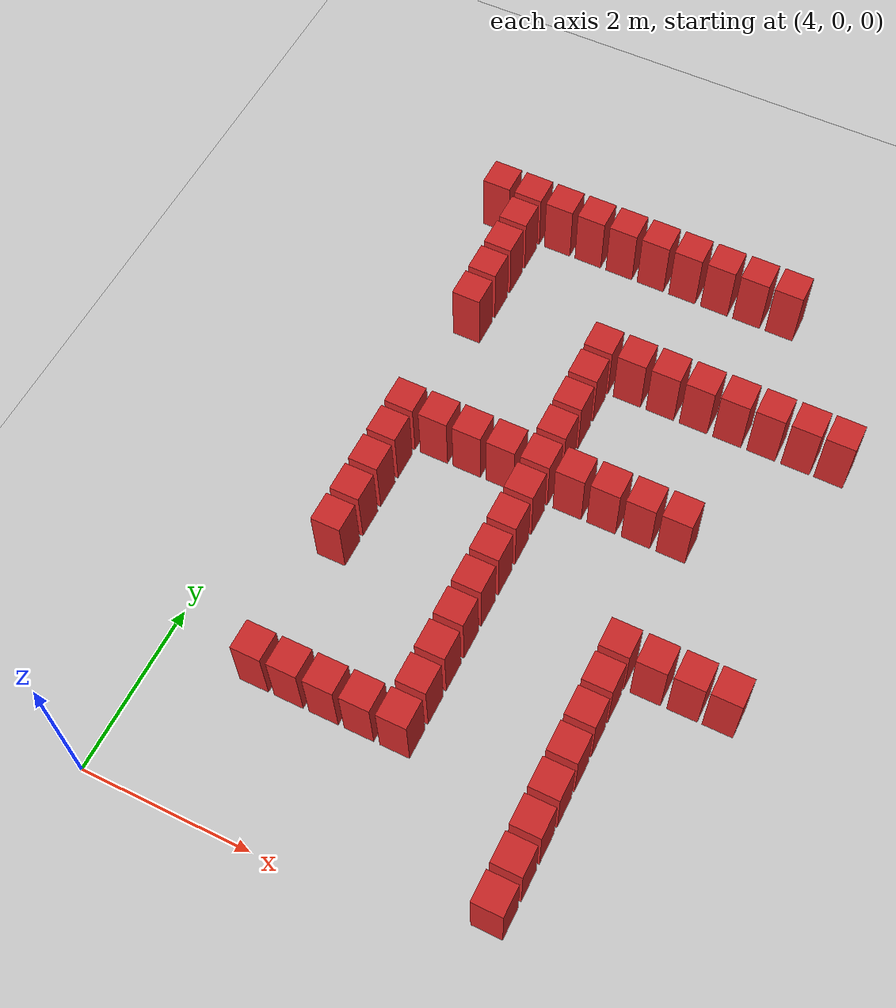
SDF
<sdf version="1.6">
 <world name="default">
  <model name="ground_plane">
   <static>1</static>
   <link name="link">
    <collision name="collision">
     <geometry><plane><normal>0 0 1</normal><size>100 100</size></plane></geometry>
     <surface><friction><ode><mu>100</mu><mu2>50</mu2></ode></friction></surface>
    </collision>
    <visual name="visual">
     <cast_shadows>0</cast_shadows>
     <geometry><plane><normal>0 0 1</normal><size>100 100</size></plane></geometry>
     <material>
      <script><uri>file://media/materials/scripts/gazebo.material</uri><name>Gazebo/Grey</name></script>
     </material>
    </visual>
   </link>
  </model>
  <model name="box_obstacle357">
   <static>0</static>
   <link name="link">
    <pose>0 0 0.1 0 -0 0</pose>
    <inertial>
     <mass>100</mass>
     <inertia>
      <ixx>0.166667</ixx>
      <ixy>0</ixy>
      <ixz>0</ixz>
      <iyy>0.166667</iyy>
      <iyz>0</iyz>
      <izz>0.166667</izz>
     </inertia>
    </inertial>
    <collision name="collision"><geometry><box><size>0.35 0.35 0.8</size></box></geometry></collision>
    <visual name="visual">
     <geometry><box><size>0.35 0.35 0.8</size></box></geometry>
     <material>
      <script><name>Gazebo/Red</name><uri>file://media/materials/scripts/gazebo.material</uri></script>
     </material>
    </visual>
   </link>
   <pose>4.69966 8.48006 0.300001 -1e-06 1.7e-05 0.000735</pose>
  </model>
  <model name="box_obstacle367">
   <static>0</static>
   <link name="link">
    <pose>0 0 0.1 0 -0 0</pose>
    <inertial>
     <mass>100</mass>
     <inertia>
      <ixx>0.166667</ixx>
      <ixy>0</ixy>
      <ixz>0</ixz>
      <iyy>0.166667</iyy>
      <iyz>0</iyz>
      <izz>0.166667</izz>
     </inertia>
    </inertial>
    <collision name="collision"><geometry><box><size>0.35 0.35 0.8</size></box></geometry></collision>
    <visual name="visual">
     <geometry><box><size>0.35 0.35 0.8</size></box></geometry>
     <material>
      <script><name>Gazebo/Red</name><uri>file://media/materials/scripts/gazebo.material</uri></script>
     </material>
    </visual>
   </link>
   <pose>5.11966 1.76006 0.300001 -1e-06 1.7e-05 0.000735</pose>
  </model>
  <model name="box_obstacle368">
   <static>0</static>
   <link name="link">
    <pose>0 0 0.1 0 -0 0</pose>
    <inertial>
     <mass>100</mass>
     <inertia>
      <ixx>0.166667</ixx>
      <ixy>0</ixy>
      <ixz>0</ixz>
      <iyy>0.166667</iyy>
      <iyz>0</iyz>
      <izz>0.166667</izz>
     </inertia>
    </inertial>
    <collision name="collision"><geometry><box><size>0.35 0.35 0.8</size></box></geometry></collision>
    <visual name="visual">
     <geometry><box><size>0.35 0.35 0.8</size></box></geometry>
     <material>
      <script><name>Gazebo/Red</name><uri>file://media/materials/scripts/gazebo.material</uri></script>
     </material>
    </visual>
   </link>
   <pose>5.11966 3.44006 0.300001 -1e-06 1.7e-05 0.000735</pose>
  </model>
  <model name="box_obstacle369">
   <static>0</static>
   <link name="link">
    <pose>0 0 0.1 0 -0 0</pose>
    <inertial>
     <mass>100</mass>
     <inertia>
      <ixx>0.166667</ixx>
      <ixy>0</ixy>
      <ixz>0</ixz>
      <iyy>0.166667</iyy>
      <iyz>0</iyz>
      <izz>0.166667</izz>
     </inertia>
    </inertial>
    <collision name="collision"><geometry><box><size>0.35 0.35 0.8</size></box></geometry></collision>
    <visual name="visual">
     <geometry><box><size>0.35 0.35 0.8</size></box></geometry>
     <material>
      <script><name>Gazebo/Red</name><uri>file://media/materials/scripts/gazebo.material</uri></script>
     </material>
    </visual>
   </link>
   <pose>5.11966 3.86006 0.300001 -1e-06 1.7e-05 0.000735</pose>
  </model>
  <model name="box_obstacle370">
   <static>0</static>
   <link name="link">
    <pose>0 0 0.1 0 -0 0</pose>
    <inertial>
     <mass>100</mass>
     <inertia>
      <ixx>0.166667</ixx>
      <ixy>0</ixy>
      <ixz>0</ixz>
      <iyy>0.166667</iyy>
      <iyz>0</iyz>
      <izz>0.166667</izz>
     </inertia>
    </inertial>
    <collision name="collision"><geometry><box><size>0.35 0.35 0.8</size></box></geometry></collision>
    <visual name="visual">
     <geometry><box><size>0.35 0.35 0.8</size></box></geometry>
     <material>
      <script><name>Gazebo/Red</name><uri>file://media/materials/scripts/gazebo.material</uri></script>
     </material>
    </visual>
   </link>
   <pose>5.11966 4.28006 0.300001 -1e-06 1.7e-05 0.000735</pose>
  </model>
  <model name="box_obstacle371">
   <static>0</static>
   <link name="link">
    <pose>0 0 0.1 0 -0 0</pose>
    <inertial>
     <mass>100</mass>
     <inertia>
      <ixx>0.166667</ixx>
      <ixy>0</ixy>
      <ixz>0</ixz>
      <iyy>0.166667</iyy>
      <iyz>0</iyz>
      <izz>0.166667</izz>
     </inertia>
    </inertial>
    <collision name="collision"><geometry><box><size>0.35 0.35 0.8</size></box></geometry></collision>
    <visual name="visual">
     <geometry><box><size>0.35 0.35 0.8</size></box></geometry>
     <material>
      <script><name>Gazebo/Red</name><uri>file://media/materials/scripts/gazebo.material</uri></script>
     </material>
    </visual>
   </link>
   <pose>5.11966 4.70006 0.300001 -1e-06 1.7e-05 0.000735</pose>
  </model>
  <model name="box_obstacle372">
   <static>0</static>
   <link name="link">
    <pose>0 0 0.1 0 -0 0</pose>
    <inertial>
     <mass>100</mass>
     <inertia>
      <ixx>0.166667</ixx>
      <ixy>0</ixy>
      <ixz>0</ixz>
      <iyy>0.166667</iyy>
      <iyz>0</iyz>
      <izz>0.166667</izz>
     </inertia>
    </inertial>
    <collision name="collision"><geometry><box><size>0.35 0.35 0.8</size></box></geometry></collision>
    <visual name="visual">
     <geometry><box><size>0.35 0.35 0.8</size></box></geometry>
     <material>
      <script><name>Gazebo/Red</name><uri>file://media/materials/scripts/gazebo.material</uri></script>
     </material>
    </visual>
   </link>
   <pose>5.11966 5.12006 0.300001 -1e-06 1.7e-05 0.000735</pose>
  </model>
  <model name="box_obstacle373">
   <static>0</static>
   <link name="link">
    <pose>0 0 0.1 0 -0 0</pose>
    <inertial>
     <mass>100</mass>
     <inertia>
      <ixx>0.166667</ixx>
      <ixy>0</ixy>
      <ixz>0</ixz>
      <iyy>0.166667</iyy>
      <iyz>0</iyz>
      <izz>0.166667</izz>
     </inertia>
    </inertial>
    <collision name="collision"><geometry><box><size>0.35 0.35 0.8</size></box></geometry></collision>
    <visual name="visual">
     <geometry><box><size>0.35 0.35 0.8</size></box></geometry>
     <material>
      <script><name>Gazebo/Red</name><uri>file://media/materials/scripts/gazebo.material</uri></script>
     </material>
    </visual>
   </link>
   <pose>5.11966 6.80006 0.300001 -1e-06 1.7e-05 0.000735</pose>
  </model>
  <model name="box_obstacle374">
   <static>0</static>
   <link name="link">
    <pose>0 0 0.1 0 -0 0</pose>
    <inertial>
     <mass>100</mass>
     <inertia>
      <ixx>0.166667</ixx>
      <ixy>0</ixy>
      <ixz>0</ixz>
      <iyy>0.166667</iyy>
      <iyz>0</iyz>
      <izz>0.166667</izz>
     </inertia>
    </inertial>
    <collision name="collision"><geometry><box><size>0.35 0.35 0.8</size></box></geometry></collision>
    <visual name="visual">
     <geometry><box><size>0.35 0.35 0.8</size></box></geometry>
     <material>
      <script><name>Gazebo/Red</name><uri>file://media/materials/scripts/gazebo.material</uri></script>
     </material>
    </visual>
   </link>
   <pose>5.11966 7.22006 0.300001 -1e-06 1.7e-05 0.000735</pose>
  </model>
  <model name="box_obstacle375">
   <static>0</static>
   <link name="link">
    <pose>0 0 0.1 0 -0 0</pose>
    <inertial>
     <mass>100</mass>
     <inertia>
      <ixx>0.166667</ixx>
      <ixy>0</ixy>
      <ixz>0</ixz>
      <iyy>0.166667</iyy>
      <iyz>0</iyz>
      <izz>0.166667</izz>
     </inertia>
    </inertial>
    <collision name="collision"><geometry><box><size>0.35 0.35 0.8</size></box></geometry></collision>
    <visual name="visual">
     <geometry><box><size>0.35 0.35 0.8</size></box></geometry>
     <material>
      <script><name>Gazebo/Red</name><uri>file://media/materials/scripts/gazebo.material</uri></script>
     </material>
    </visual>
   </link>
   <pose>5.11966 7.64006 0.300001 -1e-06 1.7e-05 0.000735</pose>
  </model>
  <model name="box_obstacle376">
   <static>0</static>
   <link name="link">
    <pose>0 0 0.1 0 -0 0</pose>
    <inertial>
     <mass>100</mass>
     <inertia>
      <ixx>0.166667</ixx>
      <ixy>0</ixy>
      <ixz>0</ixz>
      <iyy>0.166667</iyy>
      <iyz>0</iyz>
      <izz>0.166667</izz>
     </inertia>
    </inertial>
    <collision name="collision"><geometry><box><size>0.35 0.35 0.8</size></box></geometry></collision>
    <visual name="visual">
     <geometry><box><size>0.35 0.35 0.8</size></box></geometry>
     <material>
      <script><name>Gazebo/Red</name><uri>file://media/materials/scripts/gazebo.material</uri></script>
     </material>
    </visual>
   </link>
   <pose>5.11966 8.06006 0.300001 -1e-06 1.7e-05 0.000735</pose>
  </model>
  <model name="box_obstacle377">
   <static>0</static>
   <link name="link">
    <pose>0 0 0.1 0 -0 0</pose>
    <inertial>
     <mass>100</mass>
     <inertia>
      <ixx>0.166667</ixx>
      <ixy>0</ixy>
      <ixz>0</ixz>
      <iyy>0.166667</iyy>
      <iyz>0</iyz>
      <izz>0.166667</izz>
     </inertia>
    </inertial>
    <collision name="collision"><geometry><box><size>0.35 0.35 0.8</size></box></geometry></collision>
    <visual name="visual">
     <geometry><box><size>0.35 0.35 0.8</size></box></geometry>
     <material>
      <script><name>Gazebo/Red</name><uri>file://media/materials/scripts/gazebo.material</uri></script>
     </material>
    </visual>
   </link>
   <pose>5.11966 8.48006 0.300001 -1e-06 1.7e-05 0.000735</pose>
  </model>
  <model name="box_obstacle383">
   <static>0</static>
   <link name="link">
    <pose>0 0 0.1 0 -0 0</pose>
    <inertial>
     <mass>100</mass>
     <inertia>
      <ixx>0.166667</ixx>
      <ixy>0</ixy>
      <ixz>0</ixz>
      <iyy>0.166667</iyy>
      <iyz>0</iyz>
      <izz>0.166667</izz>
     </inertia>
    </inertial>
    <collision name="collision"><geometry><box><size>0.35 0.35 0.8</size></box></geometry></collision>
    <visual name="visual">
     <geometry><box><size>0.35 0.35 0.8</size></box></geometry>
     <material>
      <script><name>Gazebo/Red</name><uri>file://media/materials/scripts/gazebo.material</uri></script>
     </material>
    </visual>
   </link>
   <pose>5.53966 1.76006 0.300001 -1e-06 1.7e-05 0.000735</pose>
  </model>
  <model name="box_obstacle384">
   <static>0</static>
   <link name="link">
    <pose>0 0 0.1 0 -0 0</pose>
    <inertial>
     <mass>100</mass>
     <inertia>
      <ixx>0.166667</ixx>
      <ixy>0</ixy>
      <ixz>0</ixz>
      <iyy>0.166667</iyy>
      <iyz>0</iyz>
      <izz>0.166667</izz>
     </inertia>
    </inertial>
    <collision name="collision"><geometry><box><size>0.35 0.35 0.8</size></box></geometry></collision>
    <visual name="visual">
     <geometry><box><size>0.35 0.35 0.8</size></box></geometry>
     <material>
      <script><name>Gazebo/Red</name><uri>file://media/materials/scripts/gazebo.material</uri></script>
     </material>
    </visual>
   </link>
   <pose>5.53966 5.12006 0.300001 -1e-06 1.7e-05 0.000735</pose>
  </model>
  <model name="box_obstacle385">
   <static>0</static>
   <link name="link">
    <pose>0 0 0.1 0 -0 0</pose>
    <inertial>
     <mass>100</mass>
     <inertia>
      <ixx>0.166667</ixx>
      <ixy>0</ixy>
      <ixz>0</ixz>
      <iyy>0.166667</iyy>
      <iyz>0</iyz>
      <izz>0.166667</izz>
     </inertia>
    </inertial>
    <collision name="collision"><geometry><box><size>0.35 0.35 0.8</size></box></geometry></collision>
    <visual name="visual">
     <geometry><box><size>0.35 0.35 0.8</size></box></geometry>
     <material>
      <script><name>Gazebo/Red</name><uri>file://media/materials/scripts/gazebo.material</uri></script>
     </material>
    </visual>
   </link>
   <pose>5.53966 8.48006 0.300001 -1e-06 1.7e-05 0.000735</pose>
  </model>
  <model name="box_obstacle391">
   <static>0</static>
   <link name="link">
    <pose>0 0 0.1 0 -0 0</pose>
    <inertial>
     <mass>100</mass>
     <inertia>
      <ixx>0.166667</ixx>
      <ixy>0</ixy>
      <ixz>0</ixz>
      <iyy>0.166667</iyy>
      <iyz>0</iyz>
      <izz>0.166667</izz>
     </inertia>
    </inertial>
    <collision name="collision"><geometry><box><size>0.35 0.35 0.8</size></box></geometry></collision>
    <visual name="visual">
     <geometry><box><size>0.35 0.35 0.8</size></box></geometry>
     <material>
      <script><name>Gazebo/Red</name><uri>file://media/materials/scripts/gazebo.material</uri></script>
     </material>
    </visual>
   </link>
   <pose>5.95966 1.76006 0.300001 -1e-06 1.7e-05 0.000735</pose>
  </model>
  <model name="box_obstacle392">
   <static>0</static>
   <link name="link">
    <pose>0 0 0.1 0 -0 0</pose>
    <inertial>
     <mass>100</mass>
     <inertia>
      <ixx>0.166667</ixx>
      <ixy>0</ixy>
      <ixz>0</ixz>
      <iyy>0.166667</iyy>
      <iyz>0</iyz>
      <izz>0.166667</izz>
     </inertia>
    </inertial>
    <collision name="collision"><geometry><box><size>0.35 0.35 0.8</size></box></geometry></collision>
    <visual name="visual">
     <geometry><box><size>0.35 0.35 0.8</size></box></geometry>
     <material>
      <script><name>Gazebo/Red</name><uri>file://media/materials/scripts/gazebo.material</uri></script>
     </material>
    </visual>
   </link>
   <pose>5.95966 5.12006 0.300001 -1e-06 1.7e-05 0.000735</pose>
  </model>
  <model name="box_obstacle393">
   <static>0</static>
   <link name="link">
    <pose>0 0 0.1 0 -0 0</pose>
    <inertial>
     <mass>100</mass>
     <inertia>
      <ixx>0.166667</ixx>
      <ixy>0</ixy>
      <ixz>0</ixz>
      <iyy>0.166667</iyy>
      <iyz>0</iyz>
      <izz>0.166667</izz>
     </inertia>
    </inertial>
    <collision name="collision"><geometry><box><size>0.35 0.35 0.8</size></box></geometry></collision>
    <visual name="visual">
     <geometry><box><size>0.35 0.35 0.8</size></box></geometry>
     <material>
      <script><name>Gazebo/Red</name><uri>file://media/materials/scripts/gazebo.material</uri></script>
     </material>
    </visual>
   </link>
   <pose>5.95966 8.48006 0.300001 -1e-06 1.7e-05 0.000735</pose>
  </model>
  <model name="box_obstacle399">
   <static>0</static>
   <link name="link">
    <pose>0 0 0.1 0 -0 0</pose>
    <inertial>
     <mass>100</mass>
     <inertia>
      <ixx>0.166667</ixx>
      <ixy>0</ixy>
      <ixz>0</ixz>
      <iyy>0.166667</iyy>
      <iyz>0</iyz>
      <izz>0.166667</izz>
     </inertia>
    </inertial>
    <collision name="collision"><geometry><box><size>0.35 0.35 0.8</size></box></geometry></collision>
    <visual name="visual">
     <geometry><box><size>0.35 0.35 0.8</size></box></geometry>
     <material>
      <script><name>Gazebo/Red</name><uri>file://media/materials/scripts/gazebo.material</uri></script>
     </material>
    </visual>
   </link>
   <pose>6.37966 1.76006 0.300001 -1e-06 1.7e-05 0.000735</pose>
  </model>
  <model name="box_obstacle400">
   <static>0</static>
   <link name="link">
    <pose>0 0 0.1 0 -0 0</pose>
    <inertial>
     <mass>100</mass>
     <inertia>
      <ixx>0.166667</ixx>
      <ixy>0</ixy>
      <ixz>0</ixz>
      <iyy>0.166667</iyy>
      <iyz>0</iyz>
      <izz>0.166667</izz>
     </inertia>
    </inertial>
    <collision name="collision"><geometry><box><size>0.35 0.35 0.8</size></box></geometry></collision>
    <visual name="visual">
     <geometry><box><size>0.35 0.35 0.8</size></box></geometry>
     <material>
      <script><name>Gazebo/Red</name><uri>file://media/materials/scripts/gazebo.material</uri></script>
     </material>
    </visual>
   </link>
   <pose>6.37966 5.12006 0.300001 -1e-06 1.7e-05 0.000735</pose>
  </model>
  <model name="box_obstacle401">
   <static>0</static>
   <link name="link">
    <pose>0 0 0.1 0 -0 0</pose>
    <inertial>
     <mass>100</mass>
     <inertia>
      <ixx>0.166667</ixx>
      <ixy>0</ixy>
      <ixz>0</ixz>
      <iyy>0.166667</iyy>
      <iyz>0</iyz>
      <izz>0.166667</izz>
     </inertia>
    </inertial>
    <collision name="collision"><geometry><box><size>0.35 0.35 0.8</size></box></geometry></collision>
    <visual name="visual">
     <geometry><box><size>0.35 0.35 0.8</size></box></geometry>
     <material>
      <script><name>Gazebo/Red</name><uri>file://media/materials/scripts/gazebo.material</uri></script>
     </material>
    </visual>
   </link>
   <pose>6.37966 8.48006 0.300001 -1e-06 1.7e-05 0.000735</pose>
  </model>
  <model name="box_obstacle411">
   <static>0</static>
   <link name="link">
    <pose>0 0 0.1 0 -0 0</pose>
    <inertial>
     <mass>100</mass>
     <inertia>
      <ixx>0.166667</ixx>
      <ixy>0</ixy>
      <ixz>0</ixz>
      <iyy>0.166667</iyy>
      <iyz>0</iyz>
      <izz>0.166667</izz>
     </inertia>
    </inertial>
    <collision name="collision"><geometry><box><size>0.35 0.35 0.8</size></box></geometry></collision>
    <visual name="visual">
     <geometry><box><size>0.35 0.35 0.8</size></box></geometry>
     <material>
      <script><name>Gazebo/Red</name><uri>file://media/materials/scripts/gazebo.material</uri></script>
     </material>
    </visual>
   </link>
   <pose>6.79966 1.76006 0.300001 -1e-06 1.7e-05 0.000735</pose>
  </model>
  <model name="box_obstacle412">
   <static>0</static>
   <link name="link">
    <pose>0 0 0.1 0 -0 0</pose>
    <inertial>
     <mass>100</mass>
     <inertia>
      <ixx>0.166667</ixx>
      <ixy>0</ixy>
      <ixz>0</ixz>
      <iyy>0.166667</iyy>
      <iyz>0</iyz>
      <izz>0.166667</izz>
     </inertia>
    </inertial>
    <collision name="collision"><geometry><box><size>0.35 0.35 0.8</size></box></geometry></collision>
    <visual name="visual">
     <geometry><box><size>0.35 0.35 0.8</size></box></geometry>
     <material>
      <script><name>Gazebo/Red</name><uri>file://media/materials/scripts/gazebo.material</uri></script>
     </material>
    </visual>
   </link>
   <pose>6.79966 2.18006 0.300001 -1e-06 1.7e-05 0.000735</pose>
  </model>
  <model name="box_obstacle413">
   <static>0</static>
   <link name="link">
    <pose>0 0 0.1 0 -0 0</pose>
    <inertial>
     <mass>100</mass>
     <inertia>
      <ixx>0.166667</ixx>
      <ixy>0</ixy>
      <ixz>0</ixz>
      <iyy>0.166667</iyy>
      <iyz>0</iyz>
      <izz>0.166667</izz>
     </inertia>
    </inertial>
    <collision name="collision"><geometry><box><size>0.35 0.35 0.8</size></box></geometry></collision>
    <visual name="visual">
     <geometry><box><size>0.35 0.35 0.8</size></box></geometry>
     <material>
      <script><name>Gazebo/Red</name><uri>file://media/materials/scripts/gazebo.material</uri></script>
     </material>
    </visual>
   </link>
   <pose>6.79966 2.60006 0.300001 -1e-06 1.7e-05 0.000735</pose>
  </model>
  <model name="box_obstacle414">
   <static>0</static>
   <link name="link">
    <pose>0 0 0.1 0 -0 0</pose>
    <inertial>
     <mass>100</mass>
     <inertia>
      <ixx>0.166667</ixx>
      <ixy>0</ixy>
      <ixz>0</ixz>
      <iyy>0.166667</iyy>
      <iyz>0</iyz>
      <izz>0.166667</izz>
     </inertia>
    </inertial>
    <collision name="collision"><geometry><box><size>0.35 0.35 0.8</size></box></geometry></collision>
    <visual name="visual">
     <geometry><box><size>0.35 0.35 0.8</size></box></geometry>
     <material>
      <script><name>Gazebo/Red</name><uri>file://media/materials/scripts/gazebo.material</uri></script>
     </material>
    </visual>
   </link>
   <pose>6.79966 3.02006 0.300001 -1e-06 1.7e-05 0.000735</pose>
  </model>
  <model name="box_obstacle415">
   <static>0</static>
   <link name="link">
    <pose>0 0 0.1 0 -0 0</pose>
    <inertial>
     <mass>100</mass>
     <inertia>
      <ixx>0.166667</ixx>
      <ixy>0</ixy>
      <ixz>0</ixz>
      <iyy>0.166667</iyy>
      <iyz>0</iyz>
      <izz>0.166667</izz>
     </inertia>
    </inertial>
    <collision name="collision"><geometry><box><size>0.35 0.35 0.8</size></box></geometry></collision>
    <visual name="visual">
     <geometry><box><size>0.35 0.35 0.8</size></box></geometry>
     <material>
      <script><name>Gazebo/Red</name><uri>file://media/materials/scripts/gazebo.material</uri></script>
     </material>
    </visual>
   </link>
   <pose>6.79966 3.44006 0.300001 -1e-06 1.7e-05 0.000735</pose>
  </model>
  <model name="box_obstacle416">
   <static>0</static>
   <link name="link">
    <pose>0 0 0.1 0 -0 0</pose>
    <inertial>
     <mass>100</mass>
     <inertia>
      <ixx>0.166667</ixx>
      <ixy>0</ixy>
      <ixz>0</ixz>
      <iyy>0.166667</iyy>
      <iyz>0</iyz>
      <izz>0.166667</izz>
     </inertia>
    </inertial>
    <collision name="collision"><geometry><box><size>0.35 0.35 0.8</size></box></geometry></collision>
    <visual name="visual">
     <geometry><box><size>0.35 0.35 0.8</size></box></geometry>
     <material>
      <script><name>Gazebo/Red</name><uri>file://media/materials/scripts/gazebo.material</uri></script>
     </material>
    </visual>
   </link>
   <pose>6.79966 3.86006 0.300001 -1e-06 1.7e-05 0.000735</pose>
  </model>
  <model name="box_obstacle417">
   <static>0</static>
   <link name="link">
    <pose>0 0 0.1 0 -0 0</pose>
    <inertial>
     <mass>100</mass>
     <inertia>
      <ixx>0.166667</ixx>
      <ixy>0</ixy>
      <ixz>0</ixz>
      <iyy>0.166667</iyy>
      <iyz>0</iyz>
      <izz>0.166667</izz>
     </inertia>
    </inertial>
    <collision name="collision"><geometry><box><size>0.35 0.35 0.8</size></box></geometry></collision>
    <visual name="visual">
     <geometry><box><size>0.35 0.35 0.8</size></box></geometry>
     <material>
      <script><name>Gazebo/Red</name><uri>file://media/materials/scripts/gazebo.material</uri></script>
     </material>
    </visual>
   </link>
   <pose>6.79966 4.28006 0.300001 -1e-06 1.7e-05 0.000735</pose>
  </model>
  <model name="box_obstacle418">
   <static>0</static>
   <link name="link">
    <pose>0 0 0.1 0 -0 0</pose>
    <inertial>
     <mass>100</mass>
     <inertia>
      <ixx>0.166667</ixx>
      <ixy>0</ixy>
      <ixz>0</ixz>
      <iyy>0.166667</iyy>
      <iyz>0</iyz>
      <izz>0.166667</izz>
     </inertia>
    </inertial>
    <collision name="collision"><geometry><box><size>0.35 0.35 0.8</size></box></geometry></collision>
    <visual name="visual">
     <geometry><box><size>0.35 0.35 0.8</size></box></geometry>
     <material>
      <script><name>Gazebo/Red</name><uri>file://media/materials/scripts/gazebo.material</uri></script>
     </material>
    </visual>
   </link>
   <pose>6.79966 4.70006 0.300001 -1e-06 1.7e-05 0.000735</pose>
  </model>
  <model name="box_obstacle419">
   <static>0</static>
   <link name="link">
    <pose>0 0 0.1 0 -0 0</pose>
    <inertial>
     <mass>100</mass>
     <inertia>
      <ixx>0.166667</ixx>
      <ixy>0</ixy>
      <ixz>0</ixz>
      <iyy>0.166667</iyy>
      <iyz>0</iyz>
      <izz>0.166667</izz>
     </inertia>
    </inertial>
    <collision name="collision"><geometry><box><size>0.35 0.35 0.8</size></box></geometry></collision>
    <visual name="visual">
     <geometry><box><size>0.35 0.35 0.8</size></box></geometry>
     <material>
      <script><name>Gazebo/Red</name><uri>file://media/materials/scripts/gazebo.material</uri></script>
     </material>
    </visual>
   </link>
   <pose>6.79966 5.12006 0.300001 -1e-06 1.7e-05 0.000735</pose>
  </model>
  <model name="box_obstacle420">
   <static>0</static>
   <link name="link">
    <pose>0 0 0.1 0 -0 0</pose>
    <inertial>
     <mass>100</mass>
     <inertia>
      <ixx>0.166667</ixx>
      <ixy>0</ixy>
      <ixz>0</ixz>
      <iyy>0.166667</iyy>
      <iyz>0</iyz>
      <izz>0.166667</izz>
     </inertia>
    </inertial>
    <collision name="collision"><geometry><box><size>0.35 0.35 0.8</size></box></geometry></collision>
    <visual name="visual">
     <geometry><box><size>0.35 0.35 0.8</size></box></geometry>
     <material>
      <script><name>Gazebo/Red</name><uri>file://media/materials/scripts/gazebo.material</uri></script>
     </material>
    </visual>
   </link>
   <pose>6.79966 5.54006 0.300001 -1e-06 1.7e-05 0.000735</pose>
  </model>
  <model name="box_obstacle421">
   <static>0</static>
   <link name="link">
    <pose>0 0 0.1 0 -0 0</pose>
    <inertial>
     <mass>100</mass>
     <inertia>
      <ixx>0.166667</ixx>
      <ixy>0</ixy>
      <ixz>0</ixz>
      <iyy>0.166667</iyy>
      <iyz>0</iyz>
      <izz>0.166667</izz>
     </inertia>
    </inertial>
    <collision name="collision"><geometry><box><size>0.35 0.35 0.8</size></box></geometry></collision>
    <visual name="visual">
     <geometry><box><size>0.35 0.35 0.8</size></box></geometry>
     <material>
      <script><name>Gazebo/Red</name><uri>file://media/materials/scripts/gazebo.material</uri></script>
     </material>
    </visual>
   </link>
   <pose>6.79966 5.96006 0.300001 -1e-06 1.7e-05 0.000735</pose>
  </model>
  <model name="box_obstacle422">
   <static>0</static>
   <link name="link">
    <pose>0 0 0.1 0 -0 0</pose>
    <inertial>
     <mass>100</mass>
     <inertia>
      <ixx>0.166667</ixx>
      <ixy>0</ixy>
      <ixz>0</ixz>
      <iyy>0.166667</iyy>
      <iyz>0</iyz>
      <izz>0.166667</izz>
     </inertia>
    </inertial>
    <collision name="collision"><geometry><box><size>0.35 0.35 0.8</size></box></geometry></collision>
    <visual name="visual">
     <geometry><box><size>0.35 0.35 0.8</size></box></geometry>
     <material>
      <script><name>Gazebo/Red</name><uri>file://media/materials/scripts/gazebo.material</uri></script>
     </material>
    </visual>
   </link>
   <pose>6.79966 6.38006 0.300001 -1e-06 1.7e-05 0.000735</pose>
  </model>
  <model name="box_obstacle423">
   <static>0</static>
   <link name="link">
    <pose>0 0 0.1 0 -0 0</pose>
    <inertial>
     <mass>100</mass>
     <inertia>
      <ixx>0.166667</ixx>
      <ixy>0</ixy>
      <ixz>0</ixz>
      <iyy>0.166667</iyy>
      <iyz>0</iyz>
      <izz>0.166667</izz>
     </inertia>
    </inertial>
    <collision name="collision"><geometry><box><size>0.35 0.35 0.8</size></box></geometry></collision>
    <visual name="visual">
     <geometry><box><size>0.35 0.35 0.8</size></box></geometry>
     <material>
      <script><name>Gazebo/Red</name><uri>file://media/materials/scripts/gazebo.material</uri></script>
     </material>
    </visual>
   </link>
   <pose>6.79966 6.80006 0.300001 -1e-06 1.7e-05 0.000735</pose>
  </model>
  <model name="box_obstacle424">
   <static>0</static>
   <link name="link">
    <pose>0 0 0.1 0 -0 0</pose>
    <inertial>
     <mass>100</mass>
     <inertia>
      <ixx>0.166667</ixx>
      <ixy>0</ixy>
      <ixz>0</ixz>
      <iyy>0.166667</iyy>
      <iyz>0</iyz>
      <izz>0.166667</izz>
     </inertia>
    </inertial>
    <collision name="collision"><geometry><box><size>0.35 0.35 0.8</size></box></geometry></collision>
    <visual name="visual">
     <geometry><box><size>0.35 0.35 0.8</size></box></geometry>
     <material>
      <script><name>Gazebo/Red</name><uri>file://media/materials/scripts/gazebo.material</uri></script>
     </material>
    </visual>
   </link>
   <pose>6.79966 8.48006 0.300001 -1e-06 1.7e-05 0.000735</pose>
  </model>
  <model name="box_obstacle430">
   <static>0</static>
   <link name="link">
    <pose>0 0 0.1 0 -0 0</pose>
    <inertial>
     <mass>100</mass>
     <inertia>
      <ixx>0.166667</ixx>
      <ixy>0</ixy>
      <ixz>0</ixz>
      <iyy>0.166667</iyy>
      <iyz>0</iyz>
      <izz>0.166667</izz>
     </inertia>
    </inertial>
    <collision name="collision"><geometry><box><size>0.35 0.35 0.8</size></box></geometry></collision>
    <visual name="visual">
     <geometry><box><size>0.35 0.35 0.8</size></box></geometry>
     <material>
      <script><name>Gazebo/Red</name><uri>file://media/materials/scripts/gazebo.material</uri></script>
     </material>
    </visual>
   </link>
   <pose>7.21966 5.12006 0.300001 -1e-06 1.7e-05 0.000735</pose>
  </model>
  <model name="box_obstacle431">
   <static>0</static>
   <link name="link">
    <pose>0 0 0.1 0 -0 0</pose>
    <inertial>
     <mass>100</mass>
     <inertia>
      <ixx>0.166667</ixx>
      <ixy>0</ixy>
      <ixz>0</ixz>
      <iyy>0.166667</iyy>
      <iyz>0</iyz>
      <izz>0.166667</izz>
     </inertia>
    </inertial>
    <collision name="collision"><geometry><box><size>0.35 0.35 0.8</size></box></geometry></collision>
    <visual name="visual">
     <geometry><box><size>0.35 0.35 0.8</size></box></geometry>
     <material>
      <script><name>Gazebo/Red</name><uri>file://media/materials/scripts/gazebo.material</uri></script>
     </material>
    </visual>
   </link>
   <pose>7.21966 6.80006 0.300001 -1e-06 1.7e-05 0.000735</pose>
  </model>
  <model name="box_obstacle432">
   <static>0</static>
   <link name="link">
    <pose>0 0 0.1 0 -0 0</pose>
    <inertial>
     <mass>100</mass>
     <inertia>
      <ixx>0.166667</ixx>
      <ixy>0</ixy>
      <ixz>0</ixz>
      <iyy>0.166667</iyy>
      <iyz>0</iyz>
      <izz>0.166667</izz>
     </inertia>
    </inertial>
    <collision name="collision"><geometry><box><size>0.35 0.35 0.8</size></box></geometry></collision>
    <visual name="visual">
     <geometry><box><size>0.35 0.35 0.8</size></box></geometry>
     <material>
      <script><name>Gazebo/Red</name><uri>file://media/materials/scripts/gazebo.material</uri></script>
     </material>
    </visual>
   </link>
   <pose>7.21966 8.48006 0.300001 -1e-06 1.7e-05 0.000735</pose>
  </model>
  <model name="box_obstacle438">
   <static>0</static>
   <link name="link">
    <pose>0 0 0.1 0 -0 0</pose>
    <inertial>
     <mass>100</mass>
     <inertia>
      <ixx>0.166667</ixx>
      <ixy>0</ixy>
      <ixz>0</ixz>
      <iyy>0.166667</iyy>
      <iyz>0</iyz>
      <izz>0.166667</izz>
     </inertia>
    </inertial>
    <collision name="collision"><geometry><box><size>0.35 0.35 0.8</size></box></geometry></collision>
    <visual name="visual">
     <geometry><box><size>0.35 0.35 0.8</size></box></geometry>
     <material>
      <script><name>Gazebo/Red</name><uri>file://media/materials/scripts/gazebo.material</uri></script>
     </material>
    </visual>
   </link>
   <pose>7.63966 5.12006 0.300001 -1e-06 1.7e-05 0.000735</pose>
  </model>
  <model name="box_obstacle439">
   <static>0</static>
   <link name="link">
    <pose>0 0 0.1 0 -0 0</pose>
    <inertial>
     <mass>100</mass>
     <inertia>
      <ixx>0.166667</ixx>
      <ixy>0</ixy>
      <ixz>0</ixz>
      <iyy>0.166667</iyy>
      <iyz>0</iyz>
      <izz>0.166667</izz>
     </inertia>
    </inertial>
    <collision name="collision"><geometry><box><size>0.35 0.35 0.8</size></box></geometry></collision>
    <visual name="visual">
     <geometry><box><size>0.35 0.35 0.8</size></box></geometry>
     <material>
      <script><name>Gazebo/Red</name><uri>file://media/materials/scripts/gazebo.material</uri></script>
     </material>
    </visual>
   </link>
   <pose>7.63966 6.80006 0.300001 -1e-06 1.7e-05 0.000735</pose>
  </model>
  <model name="box_obstacle440">
   <static>0</static>
   <link name="link">
    <pose>0 0 0.1 0 -0 0</pose>
    <inertial>
     <mass>100</mass>
     <inertia>
      <ixx>0.166667</ixx>
      <ixy>0</ixy>
      <ixz>0</ixz>
      <iyy>0.166667</iyy>
      <iyz>0</iyz>
      <izz>0.166667</izz>
     </inertia>
    </inertial>
    <collision name="collision"><geometry><box><size>0.35 0.35 0.8</size></box></geometry></collision>
    <visual name="visual">
     <geometry><box><size>0.35 0.35 0.8</size></box></geometry>
     <material>
      <script><name>Gazebo/Red</name><uri>file://media/materials/scripts/gazebo.material</uri></script>
     </material>
    </visual>
   </link>
   <pose>7.63966 8.48006 0.300001 -1e-06 1.7e-05 0.000735</pose>
  </model>
  <model name="box_obstacle446">
   <static>0</static>
   <link name="link">
    <pose>0 0 0.1 0 -0 0</pose>
    <inertial>
     <mass>100</mass>
     <inertia>
      <ixx>0.166667</ixx>
      <ixy>0</ixy>
      <ixz>0</ixz>
      <iyy>0.166667</iyy>
      <iyz>0</iyz>
      <izz>0.166667</izz>
     </inertia>
    </inertial>
    <collision name="collision"><geometry><box><size>0.35 0.35 0.8</size></box></geometry></collision>
    <visual name="visual">
     <geometry><box><size>0.35 0.35 0.8</size></box></geometry>
     <material>
      <script><name>Gazebo/Red</name><uri>file://media/materials/scripts/gazebo.material</uri></script>
     </material>
    </visual>
   </link>
   <pose>8.05966 5.12006 0.300001 -1e-06 1.7e-05 0.000735</pose>
  </model>
  <model name="box_obstacle447">
   <static>0</static>
   <link name="link">
    <pose>0 0 0.1 0 -0 0</pose>
    <inertial>
     <mass>100</mass>
     <inertia>
      <ixx>0.166667</ixx>
      <ixy>0</ixy>
      <ixz>0</ixz>
      <iyy>0.166667</iyy>
      <iyz>0</iyz>
      <izz>0.166667</izz>
     </inertia>
    </inertial>
    <collision name="collision"><geometry><box><size>0.35 0.35 0.8</size></box></geometry></collision>
    <visual name="visual">
     <geometry><box><size>0.35 0.35 0.8</size></box></geometry>
     <material>
      <script><name>Gazebo/Red</name><uri>file://media/materials/scripts/gazebo.material</uri></script>
     </material>
    </visual>
   </link>
   <pose>8.05966 6.80006 0.300001 -1e-06 1.7e-05 0.000735</pose>
  </model>
  <model name="box_obstacle448">
   <static>0</static>
   <link name="link">
    <pose>0 0 0.1 0 -0 0</pose>
    <inertial>
     <mass>100</mass>
     <inertia>
      <ixx>0.166667</ixx>
      <ixy>0</ixy>
      <ixz>0</ixz>
      <iyy>0.166667</iyy>
      <iyz>0</iyz>
      <izz>0.166667</izz>
     </inertia>
    </inertial>
    <collision name="collision"><geometry><box><size>0.35 0.35 0.8</size></box></geometry></collision>
    <visual name="visual">
     <geometry><box><size>0.35 0.35 0.8</size></box></geometry>
     <material>
      <script><name>Gazebo/Red</name><uri>file://media/materials/scripts/gazebo.material</uri></script>
     </material>
    </visual>
   </link>
   <pose>8.05966 8.48006 0.300001 -1e-06 1.7e-05 0.000735</pose>
  </model>
  <model name="box_obstacle461">
   <static>0</static>
   <link name="link">
    <pose>0 0 0.1 0 -0 0</pose>
    <inertial>
     <mass>100</mass>
     <inertia>
      <ixx>0.166667</ixx>
      <ixy>0</ixy>
      <ixz>0</ixz>
      <iyy>0.166667</iyy>
      <iyz>0</iyz>
      <izz>0.166667</izz>
     </inertia>
    </inertial>
    <collision name="collision"><geometry><box><size>0.35 0.35 0.8</size></box></geometry></collision>
    <visual name="visual">
     <geometry><box><size>0.35 0.35 0.8</size></box></geometry>
     <material>
      <script><name>Gazebo/Red</name><uri>file://media/materials/scripts/gazebo.material</uri></script>
     </material>
    </visual>
   </link>
   <pose>8.47966 0.500061 0.300001 -1e-06 1.7e-05 0.000735</pose>
  </model>
  <model name="box_obstacle462">
   <static>0</static>
   <link name="link">
    <pose>0 0 0.1 0 -0 0</pose>
    <inertial>
     <mass>100</mass>
     <inertia>
      <ixx>0.166667</ixx>
      <ixy>0</ixy>
      <ixz>0</ixz>
      <iyy>0.166667</iyy>
      <iyz>0</iyz>
      <izz>0.166667</izz>
     </inertia>
    </inertial>
    <collision name="collision"><geometry><box><size>0.35 0.35 0.8</size></box></geometry></collision>
    <visual name="visual">
     <geometry><box><size>0.35 0.35 0.8</size></box></geometry>
     <material>
      <script><name>Gazebo/Red</name><uri>file://media/materials/scripts/gazebo.material</uri></script>
     </material>
    </visual>
   </link>
   <pose>8.47966 0.920061 0.300001 -1e-06 1.7e-05 0.000735</pose>
  </model>
  <model name="box_obstacle463">
   <static>0</static>
   <link name="link">
    <pose>0 0 0.1 0 -0 0</pose>
    <inertial>
     <mass>100</mass>
     <inertia>
      <ixx>0.166667</ixx>
      <ixy>0</ixy>
      <ixz>0</ixz>
      <iyy>0.166667</iyy>
      <iyz>0</iyz>
      <izz>0.166667</izz>
     </inertia>
    </inertial>
    <collision name="collision"><geometry><box><size>0.35 0.35 0.8</size></box></geometry></collision>
    <visual name="visual">
     <geometry><box><size>0.35 0.35 0.8</size></box></geometry>
     <material>
      <script><name>Gazebo/Red</name><uri>file://media/materials/scripts/gazebo.material</uri></script>
     </material>
    </visual>
   </link>
   <pose>8.47966 1.34006 0.300001 -1e-06 1.7e-05 0.000735</pose>
  </model>
  <model name="box_obstacle464">
   <static>0</static>
   <link name="link">
    <pose>0 0 0.1 0 -0 0</pose>
    <inertial>
     <mass>100</mass>
     <inertia>
      <ixx>0.166667</ixx>
      <ixy>0</ixy>
      <ixz>0</ixz>
      <iyy>0.166667</iyy>
      <iyz>0</iyz>
      <izz>0.166667</izz>
     </inertia>
    </inertial>
    <collision name="collision"><geometry><box><size>0.35 0.35 0.8</size></box></geometry></collision>
    <visual name="visual">
     <geometry><box><size>0.35 0.35 0.8</size></box></geometry>
     <material>
      <script><name>Gazebo/Red</name><uri>file://media/materials/scripts/gazebo.material</uri></script>
     </material>
    </visual>
   </link>
   <pose>8.47966 1.76006 0.300001 -1e-06 1.7e-05 0.000735</pose>
  </model>
  <model name="box_obstacle465">
   <static>0</static>
   <link name="link">
    <pose>0 0 0.1 0 -0 0</pose>
    <inertial>
     <mass>100</mass>
     <inertia>
      <ixx>0.166667</ixx>
      <ixy>0</ixy>
      <ixz>0</ixz>
      <iyy>0.166667</iyy>
      <iyz>0</iyz>
      <izz>0.166667</izz>
     </inertia>
    </inertial>
    <collision name="collision"><geometry><box><size>0.35 0.35 0.8</size></box></geometry></collision>
    <visual name="visual">
     <geometry><box><size>0.35 0.35 0.8</size></box></geometry>
     <material>
      <script><name>Gazebo/Red</name><uri>file://media/materials/scripts/gazebo.material</uri></script>
     </material>
    </visual>
   </link>
   <pose>8.47966 2.18006 0.300001 -1e-06 1.7e-05 0.000735</pose>
  </model>
  <model name="box_obstacle466">
   <static>0</static>
   <link name="link">
    <pose>0 0 0.1 0 -0 0</pose>
    <inertial>
     <mass>100</mass>
     <inertia>
      <ixx>0.166667</ixx>
      <ixy>0</ixy>
      <ixz>0</ixz>
      <iyy>0.166667</iyy>
      <iyz>0</iyz>
      <izz>0.166667</izz>
     </inertia>
    </inertial>
    <collision name="collision"><geometry><box><size>0.35 0.35 0.8</size></box></geometry></collision>
    <visual name="visual">
     <geometry><box><size>0.35 0.35 0.8</size></box></geometry>
     <material>
      <script><name>Gazebo/Red</name><uri>file://media/materials/scripts/gazebo.material</uri></script>
     </material>
    </visual>
   </link>
   <pose>8.47966 2.60006 0.300001 -1e-06 1.7e-05 0.000735</pose>
  </model>
  <model name="box_obstacle467">
   <static>0</static>
   <link name="link">
    <pose>0 0 0.1 0 -0 0</pose>
    <inertial>
     <mass>100</mass>
     <inertia>
      <ixx>0.166667</ixx>
      <ixy>0</ixy>
      <ixz>0</ixz>
      <iyy>0.166667</iyy>
      <iyz>0</iyz>
      <izz>0.166667</izz>
     </inertia>
    </inertial>
    <collision name="collision"><geometry><box><size>0.35 0.35 0.8</size></box></geometry></collision>
    <visual name="visual">
     <geometry><box><size>0.35 0.35 0.8</size></box></geometry>
     <material>
      <script><name>Gazebo/Red</name><uri>file://media/materials/scripts/gazebo.material</uri></script>
     </material>
    </visual>
   </link>
   <pose>8.47966 3.02006 0.300001 -1e-06 1.7e-05 0.000735</pose>
  </model>
  <model name="box_obstacle468">
   <static>0</static>
   <link name="link">
    <pose>0 0 0.1 0 -0 0</pose>
    <inertial>
     <mass>100</mass>
     <inertia>
      <ixx>0.166667</ixx>
      <ixy>0</ixy>
      <ixz>0</ixz>
      <iyy>0.166667</iyy>
      <iyz>0</iyz>
      <izz>0.166667</izz>
     </inertia>
    </inertial>
    <collision name="collision"><geometry><box><size>0.35 0.35 0.8</size></box></geometry></collision>
    <visual name="visual">
     <geometry><box><size>0.35 0.35 0.8</size></box></geometry>
     <material>
      <script><name>Gazebo/Red</name><uri>file://media/materials/scripts/gazebo.material</uri></script>
     </material>
    </visual>
   </link>
   <pose>8.47966 3.44006 0.300001 -1e-06 1.7e-05 0.000735</pose>
  </model>
  <model name="box_obstacle469">
   <static>0</static>
   <link name="link">
    <pose>0 0 0.1 0 -0 0</pose>
    <inertial>
     <mass>100</mass>
     <inertia>
      <ixx>0.166667</ixx>
      <ixy>0</ixy>
      <ixz>0</ixz>
      <iyy>0.166667</iyy>
      <iyz>0</iyz>
      <izz>0.166667</izz>
     </inertia>
    </inertial>
    <collision name="collision"><geometry><box><size>0.35 0.35 0.8</size></box></geometry></collision>
    <visual name="visual">
     <geometry><box><size>0.35 0.35 0.8</size></box></geometry>
     <material>
      <script><name>Gazebo/Red</name><uri>file://media/materials/scripts/gazebo.material</uri></script>
     </material>
    </visual>
   </link>
   <pose>8.47966 5.12006 0.300001 -1e-06 1.7e-05 0.000735</pose>
  </model>
  <model name="box_obstacle470">
   <static>0</static>
   <link name="link">
    <pose>0 0 0.1 0 -0 0</pose>
    <inertial>
     <mass>100</mass>
     <inertia>
      <ixx>0.166667</ixx>
      <ixy>0</ixy>
      <ixz>0</ixz>
      <iyy>0.166667</iyy>
      <iyz>0</iyz>
      <izz>0.166667</izz>
     </inertia>
    </inertial>
    <collision name="collision"><geometry><box><size>0.35 0.35 0.8</size></box></geometry></collision>
    <visual name="visual">
     <geometry><box><size>0.35 0.35 0.8</size></box></geometry>
     <material>
      <script><name>Gazebo/Red</name><uri>file://media/materials/scripts/gazebo.material</uri></script>
     </material>
    </visual>
   </link>
   <pose>8.47966 6.80006 0.300001 -1e-06 1.7e-05 0.000735</pose>
  </model>
  <model name="box_obstacle471">
   <static>0</static>
   <link name="link">
    <pose>0 0 0.1 0 -0 0</pose>
    <inertial>
     <mass>100</mass>
     <inertia>
      <ixx>0.166667</ixx>
      <ixy>0</ixy>
      <ixz>0</ixz>
      <iyy>0.166667</iyy>
      <iyz>0</iyz>
      <izz>0.166667</izz>
     </inertia>
    </inertial>
    <collision name="collision"><geometry><box><size>0.35 0.35 0.8</size></box></geometry></collision>
    <visual name="visual">
     <geometry><box><size>0.35 0.35 0.8</size></box></geometry>
     <material>
      <script><name>Gazebo/Red</name><uri>file://media/materials/scripts/gazebo.material</uri></script>
     </material>
    </visual>
   </link>
   <pose>8.47966 8.48006 0.300001 -1e-06 1.7e-05 0.000735</pose>
  </model>
  <model name="box_obstacle473">
   <static>0</static>
   <link name="link">
    <pose>0 0 0.1 0 -0 0</pose>
    <inertial>
     <mass>100</mass>
     <inertia>
      <ixx>0.166667</ixx>
      <ixy>0</ixy>
      <ixz>0</ixz>
      <iyy>0.166667</iyy>
      <iyz>0</iyz>
      <izz>0.166667</izz>
     </inertia>
    </inertial>
    <collision name="collision"><geometry><box><size>0.35 0.35 0.8</size></box></geometry></collision>
    <visual name="visual">
     <geometry><box><size>0.35 0.35 0.8</size></box></geometry>
     <material>
      <script><name>Gazebo/Red</name><uri>file://media/materials/scripts/gazebo.material</uri></script>
     </material>
    </visual>
   </link>
   <pose>8.89966 3.44006 0.300001 -1e-06 1.7e-05 0.000735</pose>
  </model>
  <model name="box_obstacle474">
   <static>0</static>
   <link name="link">
    <pose>0 0 0.1 0 -0 0</pose>
    <inertial>
     <mass>100</mass>
     <inertia>
      <ixx>0.166667</ixx>
      <ixy>0</ixy>
      <ixz>0</ixz>
      <iyy>0.166667</iyy>
      <iyz>0</iyz>
      <izz>0.166667</izz>
     </inertia>
    </inertial>
    <collision name="collision"><geometry><box><size>0.35 0.35 0.8</size></box></geometry></collision>
    <visual name="visual">
     <geometry><box><size>0.35 0.35 0.8</size></box></geometry>
     <material>
      <script><name>Gazebo/Red</name><uri>file://media/materials/scripts/gazebo.material</uri></script>
     </material>
    </visual>
   </link>
   <pose>8.89966 6.80006 0.300001 -1e-06 1.7e-05 0.000735</pose>
  </model>
  <model name="box_obstacle476">
   <static>0</static>
   <link name="link">
    <pose>0 0 0.1 0 -0 0</pose>
    <inertial>
     <mass>100</mass>
     <inertia>
      <ixx>0.166667</ixx>
      <ixy>0</ixy>
      <ixz>0</ixz>
      <iyy>0.166667</iyy>
      <iyz>0</iyz>
      <izz>0.166667</izz>
     </inertia>
    </inertial>
    <collision name="collision"><geometry><box><size>0.35 0.35 0.8</size></box></geometry></collision>
    <visual name="visual">
     <geometry><box><size>0.35 0.35 0.8</size></box></geometry>
     <material>
      <script><name>Gazebo/Red</name><uri>file://media/materials/scripts/gazebo.material</uri></script>
     </material>
    </visual>
   </link>
   <pose>9.31906 3.43959 0.3 8e-06 -4e-06 0.000694</pose>
  </model>
  <model name="box_obstacle477">
   <static>0</static>
   <link name="link">
    <pose>0 0 0.1 0 -0 0</pose>
    <inertial>
     <mass>100</mass>
     <inertia>
      <ixx>0.166667</ixx>
      <ixy>0</ixy>
      <ixz>0</ixz>
      <iyy>0.166667</iyy>
      <iyz>0</iyz>
      <izz>0.166667</izz>
     </inertia>
    </inertial>
    <collision name="collision"><geometry><box><size>0.35 0.35 0.8</size></box></geometry></collision>
    <visual name="visual">
     <geometry><box><size>0.35 0.35 0.8</size></box></geometry>
     <material>
      <script><name>Gazebo/Red</name><uri>file://media/materials/scripts/gazebo.material</uri></script>
     </material>
    </visual>
   </link>
   <pose>9.31906 6.79959 0.3 8e-06 -4e-06 0.000694</pose>
  </model>
  <model name="box_obstacle479">
   <static>0</static>
   <link name="link">
    <pose>0 0 0.1 0 -0 0</pose>
    <inertial>
     <mass>100</mass>
     <inertia>
      <ixx>0.166667</ixx>
      <ixy>0</ixy>
      <ixz>0</ixz>
      <iyy>0.166667</iyy>
      <iyz>0</iyz>
      <izz>0.166667</izz>
     </inertia>
    </inertial>
    <collision name="collision"><geometry><box><size>0.35 0.35 0.8</size></box></geometry></collision>
    <visual name="visual">
     <geometry><box><size>0.35 0.35 0.8</size></box></geometry>
     <material>
      <script><name>Gazebo/Red</name><uri>file://media/materials/scripts/gazebo.material</uri></script>
     </material>
    </visual>
   </link>
   <pose>9.71871 3.44055 0.3 2e-06 -4e-06 -0.004282</pose>
  </model>
  <model name="box_obstacle480">
   <static>0</static>
   <link name="link">
    <pose>0 0 0.1 0 -0 0</pose>
    <inertial>
     <mass>100</mass>
     <inertia>
      <ixx>0.166667</ixx>
      <ixy>0</ixy>
      <ixz>0</ixz>
      <iyy>0.166667</iyy>
      <iyz>0</iyz>
      <izz>0.166667</izz>
     </inertia>
    </inertial>
    <collision name="collision"><geometry><box><size>0.35 0.35 0.8</size></box></geometry></collision>
    <visual name="visual">
     <geometry><box><size>0.35 0.35 0.8</size></box></geometry>
     <material>
      <script><name>Gazebo/Red</name><uri>file://media/materials/scripts/gazebo.material</uri></script>
     </material>
    </visual>
   </link>
   <pose>9.71882 6.8006 0.3 5e-06 -8e-06 -0.004094</pose>
  </model>
 </world>
</sdf>
